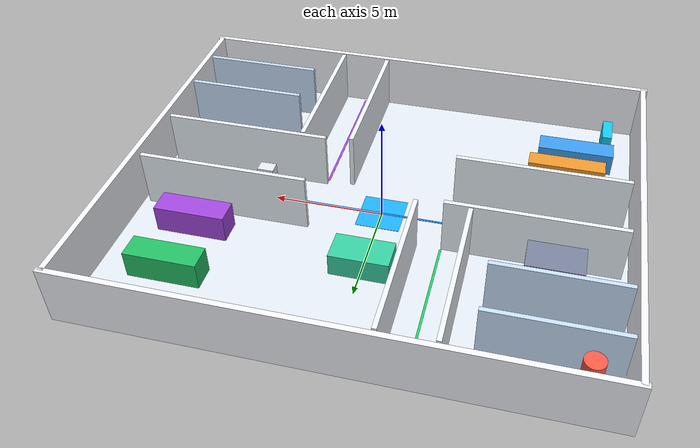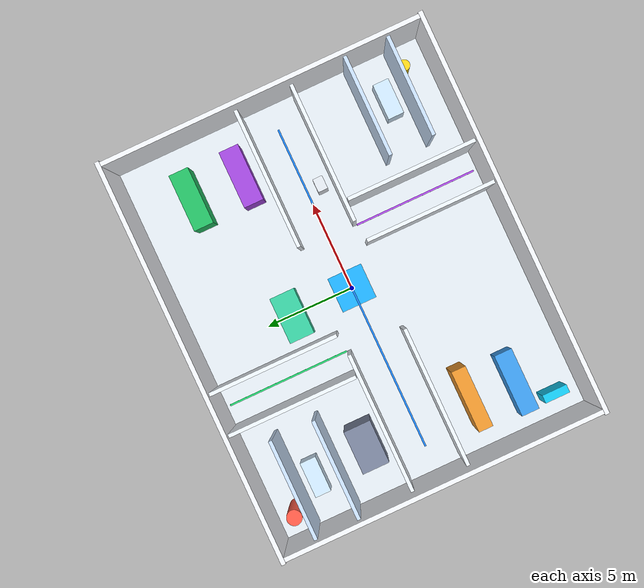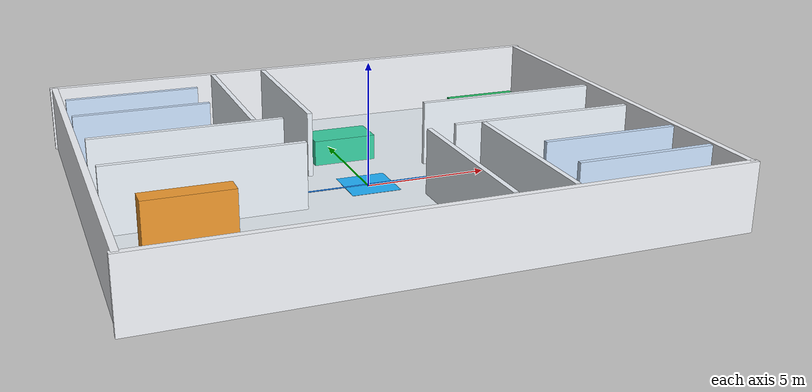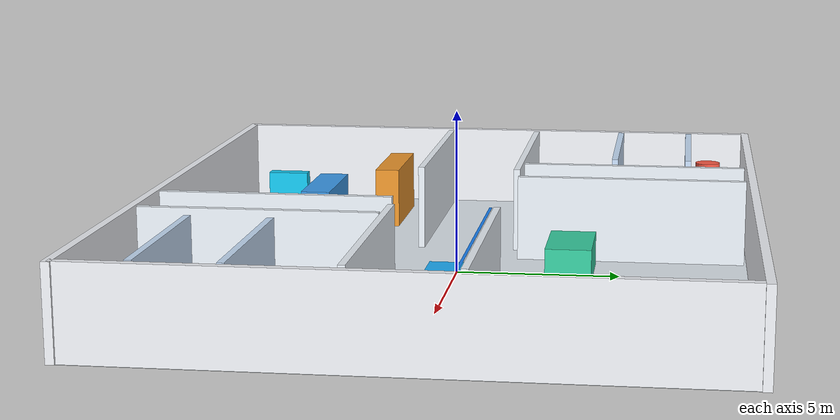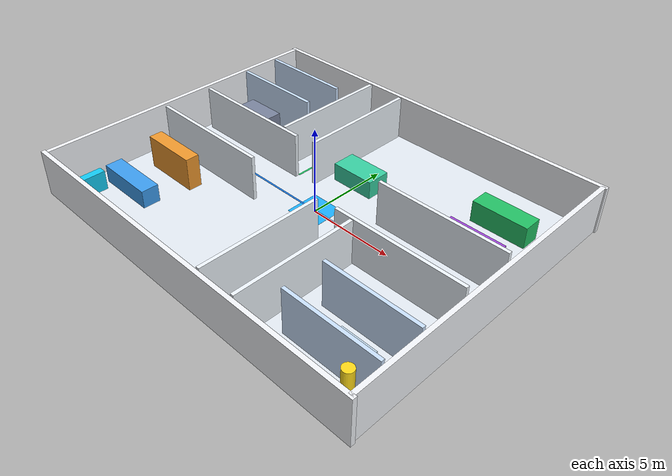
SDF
<?xml version="1.0" ?>
<sdf version="1.9">
  <world name="hospital_world">

    <!-- Gazebo systems                                                    -->

    <plugin
      filename="gz-sim-physics-system"
      name="gz::sim::systems::Physics">
    </plugin>

    <plugin
      filename="gz-sim-user-commands-system"
      name="gz::sim::systems::UserCommands">
    </plugin>

    <plugin
      filename="gz-sim-scene-broadcaster-system"
      name="gz::sim::systems::SceneBroadcaster">
    </plugin>

    <plugin
      filename="gz-sim-sensors-system"
      name="gz::sim::systems::Sensors">
      <render_engine>ogre2</render_engine>
    </plugin>

    <plugin
      filename="gz-sim-imu-system"
      name="gz::sim::systems::Imu">
    </plugin>

    <!-- Scene and lighting                                                -->

    <scene>
      <ambient>0.72 0.74 0.78 1</ambient>
      <background>0.86 0.90 0.96 1</background>
      <shadows>true</shadows>
      <grid>false</grid>
    </scene>

    <light name="hospital_sun" type="directional">
      <cast_shadows>true</cast_shadows>
      <pose>0 0 15 0 0 0</pose>
      <diffuse>0.98 0.98 1.0 1</diffuse>
      <specular>0.18 0.18 0.20 1</specular>
      <attenuation>
        <range>1000</range>
        <constant>0.9</constant>
        <linear>0.01</linear>
        <quadratic>0.001</quadratic>
      </attenuation>
      <direction>-0.35 0.15 -0.92</direction>
    </light>

    <light name="hospital_fill_light" type="point">
      <pose>0 0 7 0 0 0</pose>
      <cast_shadows>false</cast_shadows>
      <diffuse>0.85 0.90 1.0 1</diffuse>
      <specular>0.08 0.08 0.10 1</specular>
      <attenuation>
        <range>35</range>
        <constant>0.35</constant>
        <linear>0.025</linear>
        <quadratic>0.0015</quadratic>
      </attenuation>
    </light>

    <!-- Hospital floor: 22 m x 18 m                                      -->

    <model name="hospital_floor">
      <static>true</static>
      <link name="floor_link">
        <collision name="floor_collision">
          <geometry>
            <box>
              <size>22 18 0.10</size>
            </box>
          </geometry>
        </collision>

        <visual name="floor_visual">
          <geometry>
            <box>
              <size>22 18 0.10</size>
            </box>
          </geometry>
          <material>
            <ambient>0.78 0.82 0.86 1</ambient>
            <diffuse>0.90 0.93 0.96 1</diffuse>
            <specular>0.16 0.16 0.18 1</specular>
          </material>
        </visual>
      </link>
    </model>

    <!-- Outer walls                                                       -->

    <model name="north_outer_wall">
      <static>true</static>
      <pose>0 9 1.35 0 0 0</pose>
      <link name="wall_link">
        <collision name="collision">
          <geometry><box><size>22.4 0.25 2.7</size></box></geometry>
        </collision>
        <visual name="visual">
          <geometry><box><size>22.4 0.25 2.7</size></box></geometry>
          <material>
            <ambient>0.86 0.88 0.92 1</ambient>
            <diffuse>0.96 0.97 0.99 1</diffuse>
          </material>
        </visual>
      </link>
    </model>

    <model name="south_outer_wall">
      <static>true</static>
      <pose>0 -9 1.35 0 0 0</pose>
      <link name="wall_link">
        <collision name="collision">
          <geometry><box><size>22.4 0.25 2.7</size></box></geometry>
        </collision>
        <visual name="visual">
          <geometry><box><size>22.4 0.25 2.7</size></box></geometry>
          <material>
            <ambient>0.86 0.88 0.92 1</ambient>
            <diffuse>0.96 0.97 0.99 1</diffuse>
          </material>
        </visual>
      </link>
    </model>

    <model name="east_outer_wall">
      <static>true</static>
      <pose>11 0 1.35 0 0 0</pose>
      <link name="wall_link">
        <collision name="collision">
          <geometry><box><size>0.25 18.0 2.7</size></box></geometry>
        </collision>
        <visual name="visual">
          <geometry><box><size>0.25 18.0 2.7</size></box></geometry>
          <material>
            <ambient>0.86 0.88 0.92 1</ambient>
            <diffuse>0.96 0.97 0.99 1</diffuse>
          </material>
        </visual>
      </link>
    </model>

    <model name="west_outer_wall">
      <static>true</static>
      <pose>-11 0 1.35 0 0 0</pose>
      <link name="wall_link">
        <collision name="collision">
          <geometry><box><size>0.25 18.0 2.7</size></box></geometry>
        </collision>
        <visual name="visual">
          <geometry><box><size>0.25 18.0 2.7</size></box></geometry>
          <material>
            <ambient>0.86 0.88 0.92 1</ambient>
            <diffuse>0.96 0.97 0.99 1</diffuse>
          </material>
        </visual>
      </link>
    </model>

    <!-- Main corridor boundaries                                          -->
    <!-- Main corridor runs east-west around y = 0                         -->
    <!-- Clear width approximately 2.8 m                                   -->

    <model name="main_corridor_north_wall_left">
      <static>true</static>
      <pose>-6.8 1.55 1.35 0 0 0</pose>
      <link name="wall_link">
        <collision name="collision">
          <geometry><box><size>7.6 0.20 2.7</size></box></geometry>
        </collision>
        <visual name="visual">
          <geometry><box><size>7.6 0.20 2.7</size></box></geometry>
          <material>
            <ambient>0.84 0.88 0.94 1</ambient>
            <diffuse>0.94 0.97 1.0 1</diffuse>
          </material>
        </visual>
      </link>
    </model>

    <model name="main_corridor_north_wall_right">
      <static>true</static>
      <pose>6.8 1.55 1.35 0 0 0</pose>
      <link name="wall_link">
        <collision name="collision">
          <geometry><box><size>7.6 0.20 2.7</size></box></geometry>
        </collision>
        <visual name="visual">
          <geometry><box><size>7.6 0.20 2.7</size></box></geometry>
          <material>
            <ambient>0.84 0.88 0.94 1</ambient>
            <diffuse>0.94 0.97 1.0 1</diffuse>
          </material>
        </visual>
      </link>
    </model>

    <model name="main_corridor_south_wall_left">
      <static>true</static>
      <pose>-6.8 -1.55 1.35 0 0 0</pose>
      <link name="wall_link">
        <collision name="collision">
          <geometry><box><size>7.6 0.20 2.7</size></box></geometry>
        </collision>
        <visual name="visual">
          <geometry><box><size>7.6 0.20 2.7</size></box></geometry>
          <material>
            <ambient>0.84 0.88 0.94 1</ambient>
            <diffuse>0.94 0.97 1.0 1</diffuse>
          </material>
        </visual>
      </link>
    </model>

    <model name="main_corridor_south_wall_right">
      <static>true</static>
      <pose>6.8 -1.55 1.35 0 0 0</pose>
      <link name="wall_link">
        <collision name="collision">
          <geometry><box><size>7.6 0.20 2.7</size></box></geometry>
        </collision>
        <visual name="visual">
          <geometry><box><size>7.6 0.20 2.7</size></box></geometry>
          <material>
            <ambient>0.84 0.88 0.94 1</ambient>
            <diffuse>0.94 0.97 1.0 1</diffuse>
          </material>
        </visual>
      </link>
    </model>

    <!-- Vertical branch corridors                                         -->
    <!-- Junctions centered near x = -3.0 and x = 3.0                     -->

    <model name="north_branch_left_wall">
      <static>true</static>
      <pose>-4.15 5.25 1.35 0 0 0</pose>
      <link name="wall_link">
        <collision name="collision">
          <geometry><box><size>0.20 7.1 2.7</size></box></geometry>
        </collision>
        <visual name="visual">
          <geometry><box><size>0.20 7.1 2.7</size></box></geometry>
          <material>
            <ambient>0.84 0.88 0.94 1</ambient>
            <diffuse>0.94 0.97 1.0 1</diffuse>
          </material>
        </visual>
      </link>
    </model>

    <model name="north_branch_right_wall">
      <static>true</static>
      <pose>-1.85 5.25 1.35 0 0 0</pose>
      <link name="wall_link">
        <collision name="collision">
          <geometry><box><size>0.20 7.1 2.7</size></box></geometry>
        </collision>
        <visual name="visual">
          <geometry><box><size>0.20 7.1 2.7</size></box></geometry>
          <material>
            <ambient>0.84 0.88 0.94 1</ambient>
            <diffuse>0.94 0.97 1.0 1</diffuse>
          </material>
        </visual>
      </link>
    </model>

    <model name="south_branch_left_wall">
      <static>true</static>
      <pose>1.85 -5.25 1.35 0 0 0</pose>
      <link name="wall_link">
        <collision name="collision">
          <geometry><box><size>0.20 7.1 2.7</size></box></geometry>
        </collision>
        <visual name="visual">
          <geometry><box><size>0.20 7.1 2.7</size></box></geometry>
          <material>
            <ambient>0.84 0.88 0.94 1</ambient>
            <diffuse>0.94 0.97 1.0 1</diffuse>
          </material>
        </visual>
      </link>
    </model>

    <model name="south_branch_right_wall">
      <static>true</static>
      <pose>4.15 -5.25 1.35 0 0 0</pose>
      <link name="wall_link">
        <collision name="collision">
          <geometry><box><size>0.20 7.1 2.7</size></box></geometry>
        </collision>
        <visual name="visual">
          <geometry><box><size>0.20 7.1 2.7</size></box></geometry>
          <material>
            <ambient>0.84 0.88 0.94 1</ambient>
            <diffuse>0.94 0.97 1.0 1</diffuse>
          </material>
        </visual>
      </link>
    </model>

    <!-- Patient room structures                                           -->
    <!-- Repeated geometry intentionally challenges localization           -->

    <model name="room_101_partition">
      <static>true</static>
      <pose>-8.0 4.6 1.35 0 0 0</pose>
      <link name="wall_link">
        <collision name="collision">
          <geometry><box><size>5.5 0.20 2.7</size></box></geometry>
        </collision>
        <visual name="visual">
          <geometry><box><size>5.5 0.20 2.7</size></box></geometry>
          <material>
            <ambient>0.72 0.82 0.96 1</ambient>
            <diffuse>0.80 0.89 1.0 1</diffuse>
          </material>
        </visual>
      </link>
    </model>

    <model name="room_102_partition">
      <static>true</static>
      <pose>-8.0 7.0 1.35 0 0 0</pose>
      <link name="wall_link">
        <collision name="collision">
          <geometry><box><size>5.5 0.20 2.7</size></box></geometry>
        </collision>
        <visual name="visual">
          <geometry><box><size>5.5 0.20 2.7</size></box></geometry>
          <material>
            <ambient>0.72 0.82 0.96 1</ambient>
            <diffuse>0.80 0.89 1.0 1</diffuse>
          </material>
        </visual>
      </link>
    </model>

    <model name="room_201_partition">
      <static>true</static>
      <pose>8.0 -4.6 1.35 0 0 0</pose>
      <link name="wall_link">
        <collision name="collision">
          <geometry><box><size>5.5 0.20 2.7</size></box></geometry>
        </collision>
        <visual name="visual">
          <geometry><box><size>5.5 0.20 2.7</size></box></geometry>
          <material>
            <ambient>0.72 0.82 0.96 1</ambient>
            <diffuse>0.80 0.89 1.0 1</diffuse>
          </material>
        </visual>
      </link>
    </model>

    <model name="room_202_partition">
      <static>true</static>
      <pose>8.0 -7.0 1.35 0 0 0</pose>
      <link name="wall_link">
        <collision name="collision">
          <geometry><box><size>5.5 0.20 2.7</size></box></geometry>
        </collision>
        <visual name="visual">
          <geometry><box><size>5.5 0.20 2.7</size></box></geometry>
          <material>
            <ambient>0.72 0.82 0.96 1</ambient>
            <diffuse>0.80 0.89 1.0 1</diffuse>
          </material>
        </visual>
      </link>
    </model>

    <!-- Reception                                                         -->

    <model name="reception_desk">
      <static>true</static>
      <pose>-8.2 -5.8 0.55 0 0 0</pose>
      <link name="desk_link">
        <collision name="collision">
          <geometry><box><size>3.5 1.0 1.1</size></box></geometry>
        </collision>
        <visual name="visual">
          <geometry><box><size>3.5 1.0 1.1</size></box></geometry>
          <material>
            <ambient>0.18 0.48 0.78 1</ambient>
            <diffuse>0.24 0.62 0.94 1</diffuse>
          </material>
        </visual>
      </link>
    </model>

    <!-- Nurse station                                                     -->

    <model name="nurse_station">
      <static>true</static>
      <pose>0 3.5 0.55 0 0 0</pose>
      <link name="station_link">
        <collision name="collision">
          <geometry><box><size>2.6 1.4 1.1</size></box></geometry>
        </collision>
        <visual name="visual">
          <geometry><box><size>2.6 1.4 1.1</size></box></geometry>
          <material>
            <ambient>0.16 0.65 0.52 1</ambient>
            <diffuse>0.22 0.82 0.64 1</diffuse>
          </material>
        </visual>
      </link>
    </model>

    <!-- Pharmacy                                                          -->

    <model name="pharmacy_counter">
      <static>true</static>
      <pose>7.8 5.7 0.65 0 0 0</pose>
      <link name="counter_link">
        <collision name="collision">
          <geometry><box><size>3.2 1.1 1.3</size></box></geometry>
        </collision>
        <visual name="visual">
          <geometry><box><size>3.2 1.1 1.3</size></box></geometry>
          <material>
            <ambient>0.10 0.55 0.30 1</ambient>
            <diffuse>0.14 0.76 0.40 1</diffuse>
          </material>
        </visual>
      </link>
    </model>

    <!-- Laboratory                                                        -->

    <model name="laboratory_bench">
      <static>true</static>
      <pose>7.8 2.8 0.65 0 0 0</pose>
      <link name="bench_link">
        <collision name="collision">
          <geometry><box><size>3.2 1.1 1.3</size></box></geometry>
        </collision>
        <visual name="visual">
          <geometry><box><size>3.2 1.1 1.3</size></box></geometry>
          <material>
            <ambient>0.48 0.20 0.68 1</ambient>
            <diffuse>0.64 0.28 0.88 1</diffuse>
          </material>
        </visual>
      </link>
    </model>

    <!-- Imaging                                                           -->

    <model name="imaging_machine">
      <static>true</static>
      <pose>-7.8 2.8 0.9 0 0 0</pose>
      <link name="machine_link">
        <collision name="collision">
          <geometry><box><size>2.4 1.5 1.8</size></box></geometry>
        </collision>
        <visual name="visual">
          <geometry><box><size>2.4 1.5 1.8</size></box></geometry>
          <material>
            <ambient>0.32 0.36 0.44 1</ambient>
            <diffuse>0.48 0.52 0.62 1</diffuse>
          </material>
        </visual>
      </link>
    </model>

    <!-- Supply room shelving                                              -->

    <model name="supply_shelf">
      <static>true</static>
      <pose>-7.8 -3.2 1.0 0 0 0</pose>
      <link name="shelf_link">
        <collision name="collision">
          <geometry><box><size>3.4 0.8 2.0</size></box></geometry>
        </collision>
        <visual name="visual">
          <geometry><box><size>3.4 0.8 2.0</size></box></geometry>
          <material>
            <ambient>0.82 0.48 0.12 1</ambient>
            <diffuse>0.94 0.60 0.18 1</diffuse>
          </material>
        </visual>
      </link>
    </model>

    <!-- Charging station                                                  -->

    <model name="hospital_charging_station">
      <static>true</static>
      <pose>-9.6 -7.4 0.6 0 0 0</pose>
      <link name="charger_link">
        <collision name="collision">
          <geometry><box><size>0.45 1.4 1.2</size></box></geometry>
        </collision>
        <visual name="visual">
          <geometry><box><size>0.45 1.4 1.2</size></box></geometry>
          <material>
            <ambient>0.05 0.60 0.74 1</ambient>
            <diffuse>0.08 0.80 0.96 1</diffuse>
            <emissive>0.02 0.12 0.18 1</emissive>
          </material>
        </visual>
      </link>
    </model>

    <!-- Beds and carts                                                    -->
    <!-- Static obstacles placed away from main path                       -->

    <model name="patient_bed_101">
      <static>true</static>
      <pose>-8.3 6.0 0.45 0 0 0</pose>
      <link name="bed_link">
        <collision name="collision">
          <geometry><box><size>2.0 0.9 0.9</size></box></geometry>
        </collision>
        <visual name="visual">
          <geometry><box><size>2.0 0.9 0.9</size></box></geometry>
          <material>
            <ambient>0.70 0.84 0.94 1</ambient>
            <diffuse>0.82 0.92 1.0 1</diffuse>
          </material>
        </visual>
      </link>
    </model>

    <model name="patient_bed_201">
      <static>true</static>
      <pose>8.3 -6.0 0.45 0 0 0</pose>
      <link name="bed_link">
        <collision name="collision">
          <geometry><box><size>2.0 0.9 0.9</size></box></geometry>
        </collision>
        <visual name="visual">
          <geometry><box><size>2.0 0.9 0.9</size></box></geometry>
          <material>
            <ambient>0.70 0.84 0.94 1</ambient>
            <diffuse>0.82 0.92 1.0 1</diffuse>
          </material>
        </visual>
      </link>
    </model>

    <model name="medical_cart">
      <static>true</static>
      <pose>5.7 -0.8 0.55 0 0 0</pose>
      <link name="cart_link">
        <collision name="collision">
          <geometry><box><size>0.75 0.55 1.1</size></box></geometry>
        </collision>
        <visual name="visual">
          <geometry><box><size>0.75 0.55 1.1</size></box></geometry>
          <material>
            <ambient>0.75 0.78 0.82 1</ambient>
            <diffuse>0.90 0.92 0.95 1</diffuse>
          </material>
        </visual>
      </link>
    </model>

    <!-- Visual corridor markings                                          -->

    <model name="hospital_spawn_zone">
      <static>true</static>
      <pose>0 0 0.061 0 0 0</pose>
      <link name="marking_link">
        <visual name="visual">
          <geometry><box><size>2.0 2.0 0.012</size></box></geometry>
          <material>
            <ambient>0.10 0.58 0.88 1</ambient>
            <diffuse>0.12 0.70 1.0 1</diffuse>
          </material>
        </visual>
      </link>
    </model>

    <model name="main_corridor_blue_line">
      <static>true</static>
      <pose>0 0 0.062 0 0 0</pose>
      <link name="marking_link">
        <visual name="visual">
          <geometry><box><size>19.0 0.10 0.014</size></box></geometry>
          <material>
            <ambient>0.08 0.42 0.86 1</ambient>
            <diffuse>0.10 0.52 0.98 1</diffuse>
            <emissive>0.02 0.05 0.12 1</emissive>
          </material>
        </visual>
      </link>
    </model>

    <model name="north_branch_green_line">
      <static>true</static>
      <pose>-3.0 5.2 0.062 0 0 0</pose>
      <link name="marking_link">
        <visual name="visual">
          <geometry><box><size>0.10 7.0 0.014</size></box></geometry>
          <material>
            <ambient>0.10 0.66 0.34 1</ambient>
            <diffuse>0.12 0.82 0.42 1</diffuse>
          </material>
        </visual>
      </link>
    </model>

    <model name="south_branch_purple_line">
      <static>true</static>
      <pose>3.0 -5.2 0.062 0 0 0</pose>
      <link name="marking_link">
        <visual name="visual">
          <geometry><box><size>0.10 7.0 0.014</size></box></geometry>
          <material>
            <ambient>0.52 0.20 0.72 1</ambient>
            <diffuse>0.68 0.28 0.92 1</diffuse>
          </material>
        </visual>
      </link>
    </model>

    <!-- Asymmetric landmarks for AMCL                                     -->

    <model name="northwest_landmark_column">
      <static>true</static>
      <pose>-9.5 7.7 0.95 0 0 0</pose>
      <link name="column_link">
        <collision name="collision">
          <geometry>
            <cylinder>
              <radius>0.42</radius>
              <length>1.9</length>
            </cylinder>
          </geometry>
        </collision>
        <visual name="visual">
          <geometry>
            <cylinder>
              <radius>0.42</radius>
              <length>1.9</length>
            </cylinder>
          </geometry>
          <material>
            <ambient>0.94 0.28 0.22 1</ambient>
            <diffuse>1.0 0.36 0.28 1</diffuse>
          </material>
        </visual>
      </link>
    </model>

    <model name="southeast_landmark_column">
      <static>true</static>
      <pose>9.4 -7.4 0.75 0 0 0</pose>
      <link name="column_link">
        <collision name="collision">
          <geometry>
            <cylinder>
              <radius>0.30</radius>
              <length>1.5</length>
            </cylinder>
          </geometry>
        </collision>
        <visual name="visual">
          <geometry>
            <cylinder>
              <radius>0.30</radius>
              <length>1.5</length>
            </cylinder>
          </geometry>
          <material>
            <ambient>0.95 0.72 0.08 1</ambient>
            <diffuse>1.0 0.86 0.10 1</diffuse>
          </material>
        </visual>
      </link>
    </model>

  </world>
</sdf>
